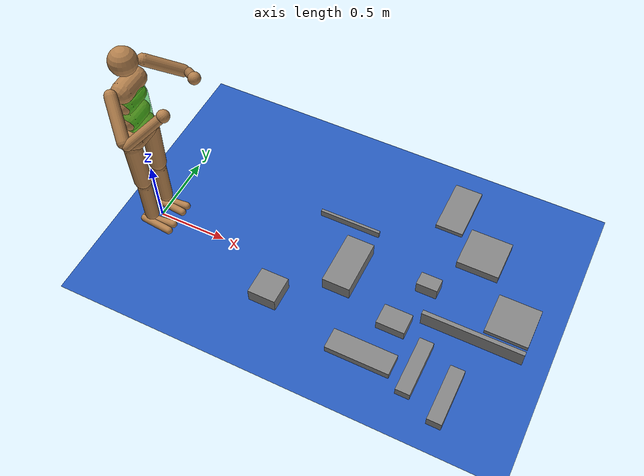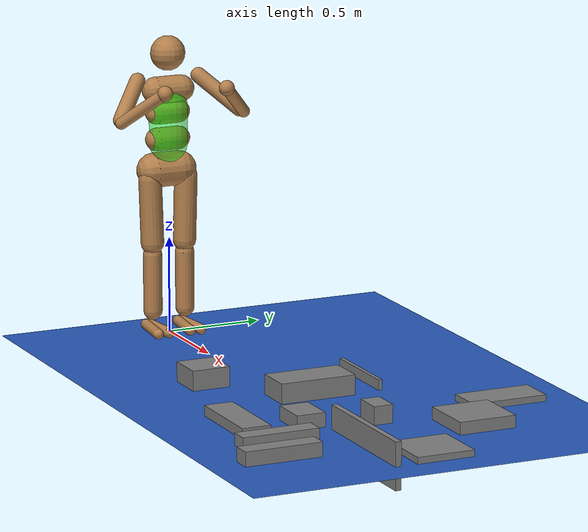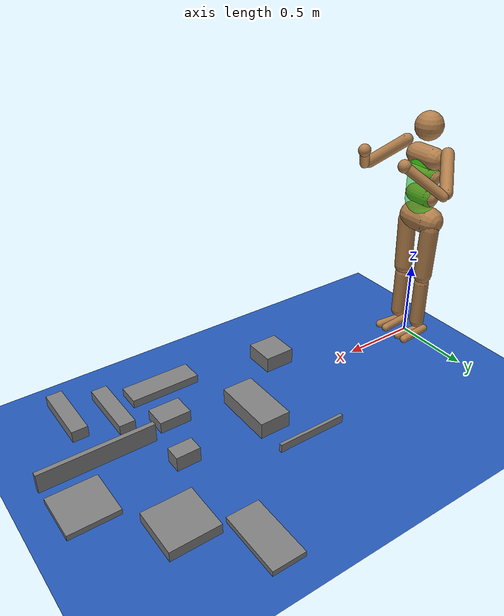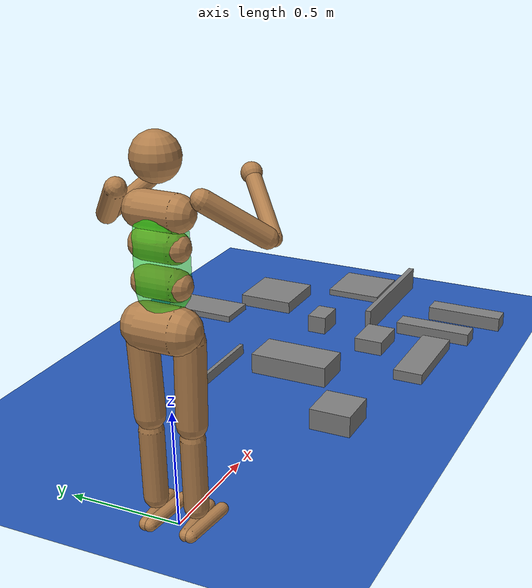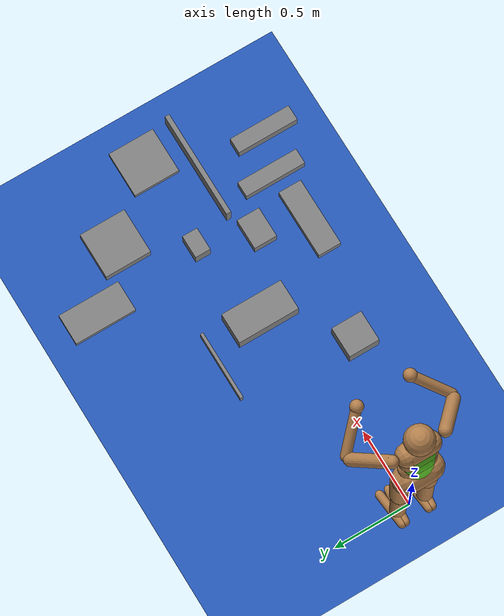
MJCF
<mujoco model="Humanoid Locomotion">
  <include file="../../common.xml"/>
  <include file="../humanoid_strong.xml" />
  <size memory="1M"/>

  <custom>
    <text name="task_transition" data="Stand|Walk|Flip|Handstand" />
    <numeric name="agent_planner" data="2" />
    <numeric name="agent_horizon" data="0.5" />
    <numeric name="agent_timestep" data="0.015" />
    <numeric name="sampling_spline_points" data="3" />
    <numeric name="sampling_exploration" data="0.05" />
    <numeric name="gradient_spline_points" data="5" />
    <numeric name="ilqg_num_rollouts" data="7" />
    <numeric name="residual_Torso" data="1.3 0.25 1.7" />
    <numeric name="residual_Speed" data="1.0 0.0 5.0" />
    <numeric name="residual_Cadence" data="1.0 0.0 2.0" />
    <numeric name="residual_Amplitude" data="0.1 0.0 2.0" />
    <numeric name="residual_DutyRatio" data="0.5 0.0 2.0" />
    <numeric name="residual_select_Flip Dir." data="0"/>
    <text name="residual_list_Flip Dir." data="Back Flip|Front Flip"/>
    <numeric name="residual_Walk Speed" data="0 0 1.0"/>
    <numeric name="residual_Walk Turn" data="0 -2 2"/>
    <numeric name="residual_select_Walk Mode" data="0"/>
    <text name="residual_list_Walk Mode" data="Automatic|Manual"/>
  </custom>

  <worldbody>
    <body name="goal" mocap="true" pos="0.0 0.0 1.1" quat="0.0 1.0 0.0 0.0">
      <geom type="capsule" size="0.1 0.05 0.1" contype="0" conaffinity="0" rgba="0 1 0 0.5" fromto="0 0 -0.1 0 0 0.1" group="2"/>
    </body>

    <body name="box1" mocap="true" pos="1.0 -0.25 0">
      <geom type="box" rgba="0.5 0.5 0.5 1" size="0.1 0.1 0.1"/>
    </body>
    <body name="box2" mocap="true" pos="1.4 0.15 0">
      <geom type="box" rgba="0.5 0.5 0.5 1" size="0.1 0.2 0.1"/>
    </body>
    <body name="box3" mocap="true" pos="1.95 0.25 0">
      <geom type="box" rgba="0.5 0.5 0.5 1" size="0.075 0.05 0.09"/>
    </body>
    <body name="box4" mocap="true" pos="1.85 -0.1 0">
      <geom type="box" rgba="0.5 0.5 0.5 1" size="0.1 0.075 0.07"/>
    </body>
    <body name="box5" mocap="true" pos="1.25 0.5 0">
      <geom type="box" rgba="0.5 0.5 0.5 1" size="0.225 0.01 0.05"/>
    </body>
    <body name="box6" mocap="true" pos="1.75 -0.4 0">
      <geom type="box" rgba="0.5 0.5 0.5 1" size="0.225 0.075 0.05"/>
    </body>
    <body name="box7" mocap="true" pos="2.2 0.65 0">
      <geom type="box" rgba="0.5 0.5 0.5 1" size="0.15 0.15 0.06"/>
    </body>
    <body name="box8" mocap="true" pos="1.9 0.95 0">
      <geom type="box" rgba="0.5 0.5 0.5 1" size="0.1 0.2 0.03"/>
    </body>
    <body name="box9" mocap="true" pos="2.1 -0.35 0">
      <geom type="box" rgba="0.5 0.5 0.5 1" size="0.05 0.2 0.06"/>
    </body>
    <body name="box10" mocap="true" pos="2.35 -0.45 0">
      <geom type="box" rgba="0.5 0.5 0.5 1" size="0.05 0.2 0.07"/>
    </body>
    <body name="box11" mocap="true" pos="2.35 0.0 0">
      <geom type="box" rgba="0.5 0.5 0.5 1" size="0.35 0.015 0.12"/>
    </body>
    <body name="box12" mocap="true" pos="2.55 0.25 0">
      <geom type="box" rgba="0.5 0.5 0.5 1" size="0.15 0.15 0.03"/>
    </body>
  </worldbody>

  <sensor>
    <user name="Height" dim="1" user="7 3.0 0 25.0 0.1 4.0" />
    <user name="Actuation" dim="21" user="3 0.05 0 0.1 0.3" />
    <user name="Balance" dim="1" user="1 2.5 0.0 25.0 0.02 4.0" />
    <user name="Upright" dim="8" user="2 2.5 0.0 25.0 0.01" />
    <user name="Posture" dim="21" user="0 0.075 0 1.0" />
    <user name="Goal Pos." dim="2" user="0 0.0 0.0 1.0" />
    <user name="Direction" dim="2" user="0 0.0 0.0 1.0" />
    <user name="Velocity" dim="2" user="7 0.0 0 25.0 0.2 4.0" />
    <user name="Walk" dim="1" user="7 0.0 0.0 25.0 0.5 3.0" />
    <user name="Gait" dim="2" user="6 0.0 0 10 0.03" />
    <user name="CoM Vel." dim="2" user="0 0.1 0.0 1.0" />
    <framepos name="trace0" objtype="body" objname="torso"/>
    <framepos name="torso_position" objtype="body" objname="torso"/>
    <framexaxis name="torso_xaxis" objtype="body" objname="torso"/>
    <framequat name="torso_orientation" objtype="body" objname="torso"/>
    <subtreecom name="torso_subcom" body="torso"/>
    <subtreelinvel name="torso_subcomvel" body="torso"/>
    <framepos name="foot_right" objtype="body" objname="foot_right"/>
    <framepos name="foot_left" objtype="body" objname="foot_left"/>
    <framepos name="sp0" objtype="site" objname="sp0"/>
    <framepos name="sp1" objtype="site" objname="sp1"/>
    <framepos name="sp2" objtype="site" objname="sp2"/>
    <framepos name="sp3" objtype="site" objname="sp3"/>
    <framepos name="pelvis_position" objtype="body" objname="pelvis"/>
    <framezaxis name="torso_up" objtype="xbody" objname="torso"/>
    <framezaxis name="pelvis_up" objtype="xbody" objname="pelvis"/>
    <framezaxis name="foot_right_up" objtype="xbody" objname="foot_right"/>
    <framezaxis name="foot_left_up" objtype="xbody" objname="foot_left"/>
    <framexaxis name="torso_forward" objtype="xbody" objname="torso"/>
    <framexaxis name="pelvis_forward" objtype="xbody" objname="pelvis"/>
    <framexaxis name="foot_right_forward" objtype="xbody" objname="foot_right"/>
    <framexaxis name="foot_left_forward" objtype="xbody" objname="foot_left"/>
    <subtreelinvel name="waist_lower_subcomvel" body="waist_lower"/>
    <framelinvel name="torso_velocity" objtype="body" objname="torso"/>
    <framelinvel name="foot_right_velocity" objtype="body" objname="foot_right"/>
    <framelinvel name="foot_left_velocity" objtype="body" objname="foot_left"/>
    <framepos name="goal_position" objtype="body" objname="goal"/>
    <framequat name="goal_orientation" objtype="body" objname="goal"/>
    <framepos name="hand_left" objtype="body" objname="hand_left"/>
    <framepos name="hand_right" objtype="body" objname="hand_right"/>
  </sensor>

  <keyframe>
    <key name="home" qpos="0 0 1.27 1 0 0 0 0 0 0 -0.1 0 -0.25 -0.5 -0.25 0 -0.1 0 -0.25 -0.5 -0.25 0 0.5 -0.5 -1.5 0.5 -0.5 -1.5" />
    <key name="flip_crouch" qpos="0.376171 -0.00225238 0.728037 0.848827 -0.00463601 0.528639 0.00343255 -0.007854 -0.475167 -0.024436 -0.203101 -0.00289591 -1.87622 -2.1143 -0.855246 0.140758 -0.203101 -0.00289591 -1.9059 -2.1143 -0.855246 0.140758 0.26239 0.46487 -1.75054 0.26239 0.46487 -1.75054"/>
    <key name="handstand_crouch" qpos="0.376171 -0.00225238 0.825 0.848827 -0.00463601 0.528639 0.00343255 -0.007854 -0.475167 -0.024436 -0.203101 -0.00289591 -1.45 -2.1143 -0.855246 0.140758 -0.203101 -0.00289591 -1.45 -2.1143 -0.855246 0.140758 0.26239 0.975 -1.75054 0.26239 0.975 -1.75054"/>
    <key name="handstand" qpos="0 0 0.645 0.0457563 -0.0130115 0.998868 -0.000468346 0 0 0 -0.1 0 -0.156239 -0.5 -0.25 0 -0.1 0 0.156239 -0.5 -0.25 0 1.13112 2.29366 -1.03822 1.13112 2.29366 -1.03822" />
  </keyframe>
</mujoco>

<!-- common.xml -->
<mujoco>

    <visual>
        <headlight ambient=".4 .4 .4" diffuse=".8 .8 .8" specular="0.1 0.1 0.1"/>
        <map znear=".01"/>
        <quality shadowsize="2048"/>
        <global elevation="-15"/>
    </visual>

    <asset>
        <texture name="blue_grid" type="2d" builtin="checker" rgb1=".02 .14 .44" rgb2=".27 .55 1" width="300" height="300" mark="edge" markrgb="1 1 1"/>
        <material name="blue_grid" texture="blue_grid" texrepeat="1 1" texuniform="true" reflectance=".2"/>

        <texture name="grey_grid" type="2d" builtin="checker" rgb1=".26 .26 .26" rgb2=".6 .6 .6" width="300" height="300" mark="edge" markrgb="1 1 1"/>
        <material name="grey_grid" texture="grey_grid" texrepeat="1 1" texuniform="true" reflectance=".2"/>
        <texture name="skybox" type="skybox" builtin="gradient" rgb1=".66 .79 1" rgb2=".9 .91 .93" width="800" height="800"/>

        <material name="self" rgba=".7 .5 .3 1"/>
        <material name="self_default" rgba=".7 .5 .3 1"/>
        <material name="self_highlight" rgba="0 .5 .3 1"/>
        <material name="effector" rgba=".7 .4 .2 1"/>
        <material name="effector_default" rgba=".7 .4 .2 1"/>
        <material name="effector_highlight" rgba="0 .5 .3 1"/>
        <material name="decoration" rgba=".2 .6 .3 1"/>
        <material name="eye" rgba="0 .2 1 1"/>
        <material name="target" rgba=".6 .3 .3 1"/>
        <material name="target_default" rgba=".6 .3 .3 1"/>
        <material name="target_highlight" rgba=".6 .3 .3 .4"/>
        <material name="site" rgba=".5 .5 .5 .3"/>
    </asset>

    <size memory="1M"/>

    <statistic extent="0.4" center="0.3 0.1 0"/>

    <visual>
        <quality shadowsize="8192"/>
        <global azimuth="180" elevation="-30"/>
    </visual>

    <default>
        <geom friction="1.0"/>
    </default>

    <compiler angle="radian" autolimits="true"/>

    <asset>
        <mesh name="apple" file="../../shared_assets/apple/apple.obj" />
        <mesh name="apple_contact0" file="../../shared_assets/apple/contact0.stl"  />
        <mesh name="apple_contact1" file="../../shared_assets/apple/contact1.stl"  />

        <mesh name="doorknob" file="../../shared_assets/doorknob/doorknob.obj" />

        <mesh name="flashlight" file="../../shared_assets/flashlight/flashlight.obj" />
        <mesh name="flashlight_contact0" file="../../shared_assets/flashlight/contact0.stl"  />
        <mesh name="flashlight_contact1" file="../../shared_assets/flashlight/contact1.stl"  />

        <mesh name="hammer" file="../../shared_assets/hammer/hammer.obj" />
        <mesh name="hammer_contact0" file="../../shared_assets/hammer/contact0.stl"  />
        <mesh name="hammer_contact1" file="../../shared_assets/hammer/contact1.stl"  />

        <mesh name="phone" file="../../shared_assets/phone/phone.obj" />
        <mesh name="phone_contact0" file="../../shared_assets/phone/contact0.stl"  />
        <mesh name="phone_contact1" file="../../shared_assets/phone/contact1.stl"  />
        <mesh name="phone_contact2" file="../../shared_assets/phone/contact2.stl"  />

        <mesh name="stapler" file="../../shared_assets/stapler/stapler.obj" />
        <mesh name="stapler_contact0" file="../../shared_assets/stapler/contact0.stl"  />
        <mesh name="stapler_contact1" file="../../shared_assets/stapler/contact1.stl"  />
        <mesh name="stapler_contact2" file="../../shared_assets/stapler/contact2.stl"  />
        <mesh name="stapler_contact3" file="../../shared_assets/stapler/contact3.stl"  />
        <mesh name="stapler_contact4" file="../../shared_assets/stapler/contact4.stl"  />

        <mesh name="waterbottle" file="../../shared_assets/waterbottle/waterbottle.obj" />
        <mesh name="waterbottle_contact0" file="../../shared_assets/waterbottle/contact0.stl"  />
        <mesh name="waterbottle_contact1" file="../../shared_assets/waterbottle/contact1.stl"  />
    </asset>

</mujoco>

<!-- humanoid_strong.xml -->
<mujoco model="Humanoid">

  <statistic extent="2" center="0 0 1"/>

  <default>
    <motor ctrlrange="-1 1" ctrllimited="true"/>
    <site size=".04" group="3"/>
    <default class="body">

      <!-- geoms -->
      <geom type="capsule" condim="1" friction=".7" solimp=".9 .99 .003" solref=".015 1" material="self" group="2"/>
      <default class="thigh">
        <geom size=".06"/>
      </default>
      <default class="shin">
        <geom fromto="0 0 0 0 0 -.3"  size=".049"/>
      </default>
      <default class="foot">
        <geom size=".027"/>
        <default class="foot1">
          <geom fromto="-.07 -.01 0 .14 -.03 0"/>
        </default>
        <default class="foot2">
          <geom fromto="-.07 .01 0 .14  .03 0"/>
        </default>
      </default>
      <default class="arm_upper">
        <geom size=".04"/>
      </default>
      <default class="arm_lower">
        <geom size=".031"/>
      </default>
      <default class="hand">
        <geom type="sphere" size=".04"/>
      </default>

      <!-- joints -->
      <joint type="hinge" damping=".2" stiffness="1" armature=".01" limited="true" solimplimit="0 .99 .01"/>
      <default class="joint_big">
        <joint damping="5" stiffness="10"/>
        <default class="hip_x">
          <joint range="-30 10"/>
        </default>
        <default class="hip_z">
          <joint range="-60 35"/>
        </default>
        <default class="hip_y">
          <joint axis="0 1 0" range="-150 20"/>
        </default>
        <default class="joint_big_stiff">
          <joint stiffness="20"/>
        </default>
      </default>
      <default class="knee">
        <joint pos="0 0 .02" axis="0 -1 0" range="-160 2"/>
      </default>
      <default class="ankle">
        <joint range="-50 50"/>
        <default class="ankle_y">
          <joint pos="0 0 .08" axis="0 1 0" stiffness="6"/>
        </default>
        <default class="ankle_x">
          <joint pos="0 0 .04" stiffness="3"/>
        </default>
      </default>
      <default class="shoulder">
        <joint range="-180 180"/>
      </default>
      <default class="elbow">
        <joint range="-100 50" stiffness="0"/>
      </default>

      <!-- tracking site -->
      <default class="tracking_site">
        <site type="sphere" size="0.027" rgba="1 0 0 1" group="3"/>
      </default>
    </default>
  </default>

  <worldbody>
    <geom name="floor" type="plane" conaffinity="1" size="50 50 .05" material="blue_grid"/>
    <body name="torso" pos="0 0 1.282" childclass="body">
      <light name="top" pos="0 0 2" mode="trackcom"/>
      <camera name="back" pos="-3 0 1" xyaxes="0 -1 0 1 0 2" mode="trackcom"/>
      <camera name="side" pos="0 -3 1" xyaxes="1 0 0 0 1 2" mode="trackcom"/>
      <freejoint name="root"/>
      <geom name="torso" fromto="0 -.07 0 0 .07 0" size=".07"/>
      <geom name="waist_upper" fromto="-.01 -.06 -.12 -.01 .06 -.12" size=".06"/>
      <body name="head" pos="0 0 .19">
        <geom name="head" type="sphere" size=".09"/>
        <site name="tracking[head]" class="tracking_site" pos="0.09 0 0" />
        <camera name="egocentric" pos=".09 0 0" xyaxes="0 -1 0 .1 0 1" fovy="80"/>
      </body>
      <body name="waist_lower" pos="-.01 0 -.26">
        <geom name="waist_lower" fromto="0 -.06 0 0 .06 0" size=".06"/>
        <joint name="abdomen_z" pos="0 0 .065" axis="0 0 1" range="-45 45" class="joint_big_stiff"/>
        <joint name="abdomen_y" pos="0 0 .065" axis="0 1 0" range="-75 30" class="joint_big"/>
        <body name="pelvis" pos="0 0 -.165">
          <site name="tracking[pelvis]" class="tracking_site" pos="0 0 0.075" size=".05" />
          <joint name="abdomen_x" pos="0 0 .1" axis="1 0 0" range="-35 35" class="joint_big"/>
          <geom name="butt" fromto="-.02 -.07 0 -.02 .07 0" size=".09"/>
          <body name="thigh_right" pos="0 -.1 -.04">
            <site name="tracking[rhip]" class="tracking_site" pos="0 0.025 0.025" />
            <joint name="hip_x_right" axis="1 0 0" class="hip_x"/>
            <joint name="hip_z_right" axis="0 0 1" class="hip_z"/>
            <joint name="hip_y_right" class="hip_y"/>
            <geom name="thigh_right" fromto="0 0 0 0 .01 -.34" class="thigh"/>
            <body name="shin_right" pos="0 .01 -.4">
              <joint name="knee_right" class="knee"/>
              <site name="tracking[rknee]" class="tracking_site" pos="0 0 0.05" />
              <geom name="shin_right" class="shin"/>
              <body name="foot_right" pos="0 0 -.39">
                <joint name="ankle_y_right" class="ankle_y"/>
                <joint name="ankle_x_right" class="ankle_x" axis="1 0 .5"/>
                <geom name="foot1_right" class="foot1"/>
                <geom name="foot2_right" class="foot2"/>
                <site name="foot_right" pos=".05 .03 0" type="sphere" size=".027"/>
                <site name="sp2" pos="-.07 0 0" type="sphere" size=".027"/>
                <site name="sp3" pos=".14 0 0" type="sphere" size=".027"/>
                <body name="heel_right" pos="-0.05 0 0.04">
                  <site name="tracking[rheel]" class="tracking_site" />
                </body>
                <body name="toe_right" pos="0.07 0 -0.01">
                  <site name="tracking[rtoe]" class="tracking_site" />
                </body>
              </body>
            </body>
          </body>
          <body name="thigh_left" pos="0 .1 -.04">
            <site name="tracking[lhip]" class="tracking_site" pos="0 -0.025 0.025" />
            <joint name="hip_x_left" axis="-1 0 0" class="hip_x"/>
            <joint name="hip_z_left" axis="0 0 -1" class="hip_z"/>
            <joint name="hip_y_left" class="hip_y"/>
            <geom name="thigh_left" fromto="0 0 0 0 -.01 -.34" class="thigh"/>
            <body name="shin_left" pos="0 -.01 -.4">
              <joint name="knee_left" class="knee"/>
              <site name="tracking[lknee]" class="tracking_site" pos="0 0 0.05" />
              <geom name="shin_left" fromto="0 0 0 0 0 -.3" class="shin"/>
              <body name="foot_left" pos="0 0 -.39">
                <joint name="ankle_y_left" class="ankle_y"/>
                <joint name="ankle_x_left" class="ankle_x" axis="-1 0 -.5"/>
                <geom name="foot1_left" class="foot1"/>
                <geom name="foot2_left" class="foot2"/>
                <site name="foot_left" pos=".05 -.03 0" type="sphere" size=".027"/>
                <site name="sp0" pos="-.07 0 0" type="sphere" size=".027"/>
                <site name="sp1" pos=".14 0 0" type="sphere" size=".027"/>
                <body name="heel_left" pos="-0.05 0 0.04">
                  <site name="tracking[lheel]" class="tracking_site" />
                </body>
                <body name="toe_left" pos="0.07 0 -0.01">
                  <site name="tracking[ltoe]" class="tracking_site" />
                </body>
              </body>
            </body>
          </body>
        </body>
      </body>
      <body name="upper_arm_right" pos="0 -.17 .06">
        <site name="tracking[rshoulder]" class="tracking_site" />
        <joint name="shoulder1_right" axis="2 1 1"  class="shoulder"/>
        <joint name="shoulder2_right" axis="0 -1 1" class="shoulder"/>
        <geom name="upper_arm_right" fromto="0 0 0 .16 -.16 -.16" class="arm_upper"/>
        <body name="lower_arm_right" pos=".18 -.18 -.18">
          <joint name="elbow_right" axis="0 -1 1" class="elbow"/>
          <site name="tracking[relbow]" class="tracking_site" />
          <site name="tracking[rhand]" class="tracking_site" pos="0.13 0.13 0.13" />
          <geom name="lower_arm_right" fromto=".01 .01 .01 .17 .17 .17" class="arm_lower"/>
          <body name="hand_right" pos=".18 .18 .18">
            <geom name="hand_right" zaxis="1 1 1" class="hand"/>
          </body>
        </body>
      </body>
      <body name="upper_arm_left" pos="0 .17 .06">
        <site name="tracking[lshoulder]" class="tracking_site" />
        <joint name="shoulder1_left" axis="-2 1 -1" class="shoulder"/>
        <joint name="shoulder2_left" axis="0 -1 -1"  class="shoulder"/>
        <geom name="upper_arm_left" fromto="0 0 0 .16 .16 -.16" class="arm_upper"/>
        <body name="lower_arm_left" pos=".18 .18 -.18">
          <joint name="elbow_left" axis="0 -1 -1" class="elbow"/>
          <site name="tracking[lelbow]" class="tracking_site" />
          <site name="tracking[lhand]" class="tracking_site" pos="0.13 -0.13 0.13" />
          <geom name="lower_arm_left" fromto=".01 -.01 .01 .17 -.17 .17" class="arm_lower"/>
          <body name="hand_left" pos=".18 -.18 .18">
            <geom name="hand_left" zaxis="1 -1 1" class="hand"/>
          </body>
        </body>
      </body>
    </body>
  </worldbody>

  <contact>
    <exclude body1="waist_lower" body2="thigh_right"/>
    <exclude body1="waist_lower" body2="thigh_left"/>
  </contact>

  <tendon>
    <fixed name="hamstring_right" limited="true" range="-0.3 2">
      <joint joint="hip_y_right" coef=".5"/>
      <joint joint="knee_right" coef="-.5"/>
    </fixed>
    <fixed name="hamstring_left" limited="true" range="-0.3 2">
      <joint joint="hip_y_left" coef=".5"/>
      <joint joint="knee_left" coef="-.5"/>
    </fixed>
  </tendon>

  <actuator>
    <motor name="abdomen_y"       gear="80"  joint="abdomen_y"/>
    <motor name="abdomen_z"       gear="80"  joint="abdomen_z"/>
    <motor name="abdomen_x"       gear="80"  joint="abdomen_x"/>
    <motor name="hip_x_right"     gear="80"  joint="hip_x_right"/>
    <motor name="hip_z_right"     gear="80"  joint="hip_z_right"/>
    <motor name="hip_y_right"     gear="240" joint="hip_y_right"/>
    <motor name="knee_right"      gear="200" joint="knee_right"/>
    <motor name="ankle_x_right"   gear="40"  joint="ankle_x_right"/>
    <motor name="ankle_y_right"   gear="40"  joint="ankle_y_right"/>
    <motor name="hip_x_left"      gear="80"  joint="hip_x_left"/>
    <motor name="hip_z_left"      gear="80"  joint="hip_z_left"/>
    <motor name="hip_y_left"      gear="240" joint="hip_y_left"/>
    <motor name="knee_left"       gear="200" joint="knee_left"/>
    <motor name="ankle_x_left"    gear="40"  joint="ankle_x_left"/>
    <motor name="ankle_y_left"    gear="40"  joint="ankle_y_left"/>
    <motor name="shoulder1_right" gear="40"  joint="shoulder1_right"/>
    <motor name="shoulder2_right" gear="40"  joint="shoulder2_right"/>
    <motor name="elbow_right"     gear="80"  joint="elbow_right"/>
    <motor name="shoulder1_left"  gear="40"  joint="shoulder1_left"/>
    <motor name="shoulder2_left"  gear="40"  joint="shoulder2_left"/>
    <motor name="elbow_left"      gear="80"  joint="elbow_left"/>
  </actuator>

</mujoco>
